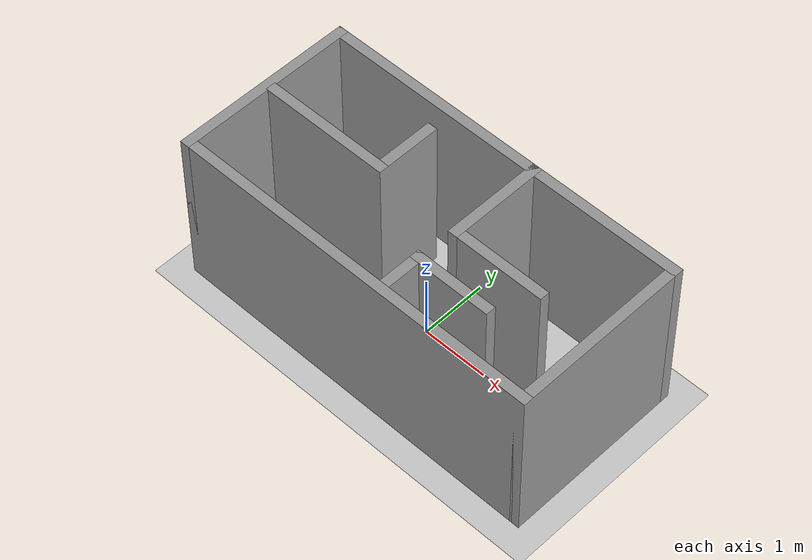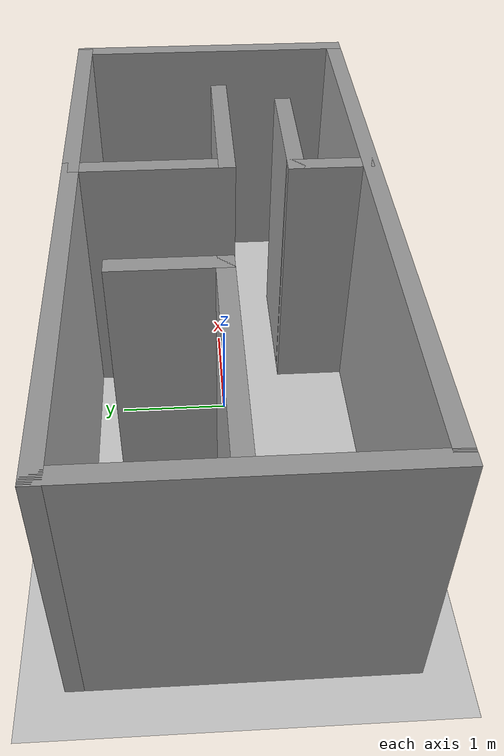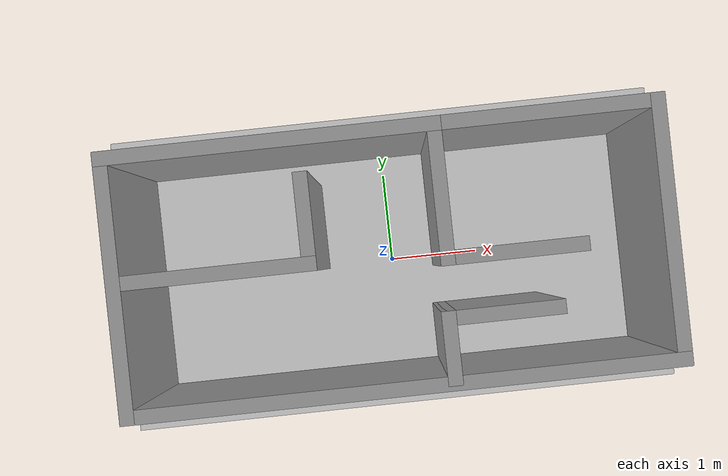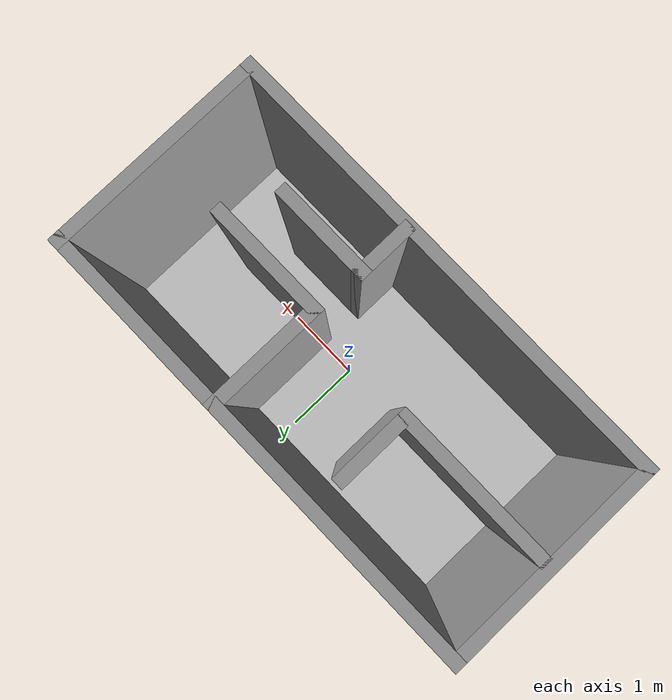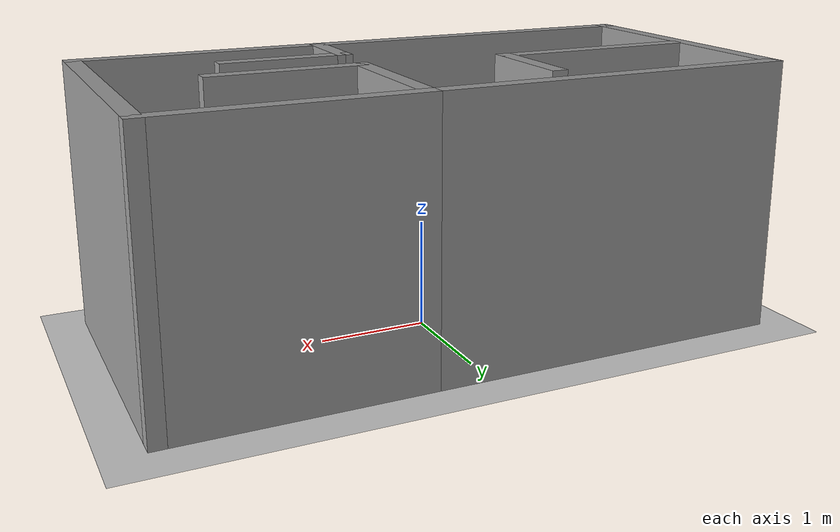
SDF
<sdf version="1.7">
 <world name="default">
  <light name="sun" type="directional">
   <pose>0 0 10 0 -0 0</pose>
   <diffuse>0.8 0.8 0.8 1</diffuse>
   <specular>0.2 0.2 0.2 1</specular>
   <attenuation>
    <range>1000</range>
    <constant>0.9</constant>
    <linear>0.01</linear>
    <quadratic>0.001</quadratic>
   </attenuation>
   <direction>-0.5 0.1 -0.9</direction>
   <spot><inner_angle>0</inner_angle><outer_angle>0</outer_angle><falloff>0</falloff></spot>
  </light>
  <model name="ground_plane">
   <static>1</static>
   <link name="link">
    <collision name="collision">
     <geometry><plane><normal>0 0 1</normal><size>100 100</size></plane></geometry>
     <surface>
      <contact><collide_bitmask>65535</collide_bitmask></contact>
      <friction><ode><mu>100</mu><mu2>50</mu2></ode></friction>
     </surface>
    </collision>
    <visual name="visual">
     <cast_shadows>0</cast_shadows>
     <geometry><plane><normal>0 0 1</normal><size>100 100</size></plane></geometry>
     <material>
      <script><uri>file://media/materials/scripts/gazebo.material</uri><name>Gazebo/Grey</name></script>
     </material>
    </visual>
   </link>
  </model>
  <gravity>0 0 -9.8</gravity>
  <magnetic_field>6e-06 2.3e-05 -4.2e-05</magnetic_field>
  <atmosphere type="adiabatic"/>
  <physics type="ode">
   <max_step_size>0.001</max_step_size>
   <real_time_factor>1</real_time_factor>
   <real_time_update_rate>1000</real_time_update_rate>
  </physics>
  <scene><ambient>0.4 0.4 0.4 1</ambient><background>0.7 0.7 0.7 1</background><shadows>1</shadows></scene>
  <audio><device>default</device></audio>
  <spherical_coordinates>
   <surface_model>EARTH_WGS84</surface_model>
   <latitude_deg>0</latitude_deg>
   <longitude_deg>0</longitude_deg>
   <elevation>0</elevation>
   <heading_deg>0</heading_deg>
  </spherical_coordinates>
  <model name="room">
   <pose>0 0.7225 0 0 -0 0</pose>
   <link name="Wall_0">
    <collision name="Wall_0_Collision">
     <geometry><box><size>3.5 0.15 2.5</size></box></geometry>
     <pose>0 0 1.25 0 -0 0</pose>
    </collision>
    <visual name="Wall_0_Visual">
     <pose>0 0 1.25 0 -0 0</pose>
     <geometry><box><size>3.5 0.15 2.5</size></box></geometry>
     <material>
      <script><uri>file://media/materials/scripts/gazebo.material</uri><name>Gazebo/Grey</name></script>
      <ambient>1 1 1 1</ambient>
     </material>
     <meta><layer>0</layer></meta>
    </visual>
    <pose>-1.125 0.5775 0 0 -0 3.14159</pose>
   </link>
   <link name="Wall_1">
    <collision name="Wall_1_Collision">
     <geometry><box><size>2.75 0.15 2.5</size></box></geometry>
     <pose>0 0 1.25 0 -0 0</pose>
    </collision>
    <visual name="Wall_1_Visual">
     <pose>0 0 1.25 0 -0 0</pose>
     <geometry><box><size>2.75 0.15 2.5</size></box></geometry>
     <material>
      <script><uri>file://media/materials/scripts/gazebo.material</uri><name>Gazebo/Grey</name></script>
      <ambient>1 1 1 1</ambient>
     </material>
     <meta><layer>0</layer></meta>
    </visual>
    <pose>-2.8 -0.7225 0 0 -0 -1.5708</pose>
   </link>
   <link name="Wall_11">
    <collision name="Wall_11_Collision">
     <geometry><box><size>0.75 0.15 2.5</size></box></geometry>
     <pose>0 0 1.25 0 -0 0</pose>
    </collision>
    <visual name="Wall_11_Visual">
     <pose>0 0 1.25 0 -0 0</pose>
     <geometry><box><size>0.75 0.15 2.5</size></box></geometry>
     <material>
      <script><uri>file://media/materials/scripts/gazebo.material</uri><name>Gazebo/Grey</name></script>
      <ambient>1 1 1 1</ambient>
     </material>
     <meta><layer>0</layer></meta>
    </visual>
    <pose>0.5 -1.6725 0 0 -0 1.5708</pose>
   </link>
   <link name="Wall_12">
    <collision name="Wall_12_Collision">
     <geometry><box><size>1.25 0.15 2.5</size></box></geometry>
     <pose>0 0 1.25 0 -0 0</pose>
    </collision>
    <visual name="Wall_12_Visual">
     <pose>0 0 1.25 0 -0 0</pose>
     <geometry><box><size>1.25 0.15 2.5</size></box></geometry>
     <material>
      <script><uri>file://media/materials/scripts/gazebo.material</uri><name>Gazebo/Grey</name></script>
      <ambient>1 1 1 1</ambient>
     </material>
     <meta><layer>0</layer></meta>
    </visual>
    <pose>1.05 -1.3725 0 0 -0 0</pose>
   </link>
   <link name="Wall_2">
    <collision name="Wall_2_Collision">
     <geometry><box><size>5.75 0.15 2.5</size></box></geometry>
     <pose>0 0 1.25 0 -0 0</pose>
    </collision>
    <visual name="Wall_2_Visual">
     <pose>0 0 1.25 0 -0 0</pose>
     <geometry><box><size>5.75 0.15 2.5</size></box></geometry>
     <material>
      <script><uri>file://media/materials/scripts/gazebo.material</uri><name>Gazebo/Grey</name></script>
      <ambient>1 1 1 1</ambient>
     </material>
     <meta><layer>0</layer></meta>
    </visual>
    <pose>0 -2.0225 0 0 -0 0</pose>
   </link>
   <link name="Wall_3">
    <collision name="Wall_3_Collision">
     <geometry><box><size>2.75 0.15 2.5</size></box></geometry>
     <pose>0 0 1.25 0 -0 0</pose>
    </collision>
    <visual name="Wall_3_Visual">
     <pose>0 0 1.25 0 -0 0</pose>
     <geometry><box><size>2.75 0.15 2.5</size></box></geometry>
     <material>
      <script><uri>file://media/materials/scripts/gazebo.material</uri><name>Gazebo/Grey</name></script>
      <ambient>1 1 1 1</ambient>
     </material>
     <meta><layer>0</layer></meta>
    </visual>
    <pose>2.8 -0.7225 0 0 -0 1.5708</pose>
   </link>
   <link name="Wall_4">
    <collision name="Wall_4_Collision">
     <geometry><box><size>2.4 0.15 2.5</size></box></geometry>
     <pose>0 0 1.25 0 -0 0</pose>
    </collision>
    <visual name="Wall_4_Visual">
     <pose>0 0 1.25 0 -0 0</pose>
     <geometry><box><size>2.4 0.15 2.5</size></box></geometry>
     <material>
      <script><uri>file://media/materials/scripts/gazebo.material</uri><name>Gazebo/Grey</name></script>
      <ambient>1 1 1 1</ambient>
     </material>
     <meta><layer>0</layer></meta>
    </visual>
    <pose>1.675 0.5775 0 0 -0 3.14159</pose>
   </link>
   <link name="Wall_5">
    <collision name="Wall_5_Collision">
     <geometry><box><size>1.5 0.15 2.5</size></box></geometry>
     <pose>0 0 1.25 0 -0 0</pose>
    </collision>
    <visual name="Wall_5_Visual">
     <pose>0 0 1.25 0 -0 0</pose>
     <geometry><box><size>1.5 0.15 2.5</size></box></geometry>
     <material>
      <script><uri>file://media/materials/scripts/gazebo.material</uri><name>Gazebo/Grey</name></script>
      <ambient>1 1 1 1</ambient>
     </material>
     <meta><layer>0</layer></meta>
    </visual>
    <pose>0.55 -0.0975 0 0 -0 -1.5708</pose>
   </link>
   <link name="Wall_6">
    <collision name="Wall_6_Collision">
     <geometry><box><size>1.5 0.15 2.5</size></box></geometry>
     <pose>0 0 1.25 0 -0 0</pose>
    </collision>
    <visual name="Wall_6_Visual">
     <pose>0 0 1.25 0 -0 0</pose>
     <geometry><box><size>1.5 0.15 2.5</size></box></geometry>
     <material>
      <script><uri>file://media/materials/scripts/gazebo.material</uri><name>Gazebo/Grey</name></script>
      <ambient>1 1 1 1</ambient>
     </material>
     <meta><layer>0</layer></meta>
    </visual>
    <pose>1.225 -0.7725 0 0 -0 0</pose>
   </link>
   <link name="Wall_8">
    <collision name="Wall_8_Collision">
     <geometry><box><size>2 0.15 2.5</size></box></geometry>
     <pose>0 0 1.25 0 -0 0</pose>
    </collision>
    <visual name="Wall_8_Visual">
     <pose>0 0 1.25 0 -0 0</pose>
     <geometry><box><size>2 0.15 2.5</size></box></geometry>
     <material>
      <script><uri>file://media/materials/scripts/gazebo.material</uri><name>Gazebo/Grey</name></script>
      <ambient>1 1 1 1</ambient>
     </material>
     <meta><layer>0</layer></meta>
    </visual>
    <pose>-1.755 -0.6825 0 0 -0 0</pose>
   </link>
   <link name="Wall_9">
    <collision name="Wall_9_Collision">
     <geometry><box><size>1 0.15 2.5</size></box></geometry>
     <pose>0 0 1.25 0 -0 0</pose>
    </collision>
    <visual name="Wall_9_Visual">
     <pose>0 0 1.25 0 -0 0</pose>
     <geometry><box><size>1 0.15 2.5</size></box></geometry>
     <material>
      <script><uri>file://media/materials/scripts/gazebo.material</uri><name>Gazebo/Grey</name></script>
      <ambient>1 1 1 1</ambient>
     </material>
     <meta><layer>0</layer></meta>
    </visual>
    <pose>-0.83 -0.2575 0 0 -0 1.5708</pose>
   </link>
   <static>1</static>
  </model>
 </world>
</sdf>
